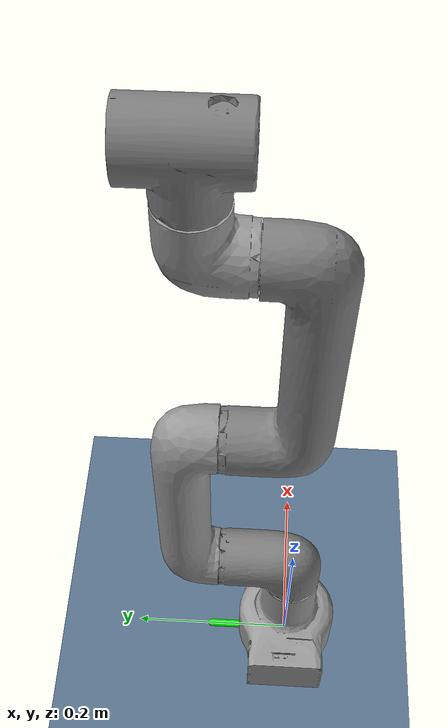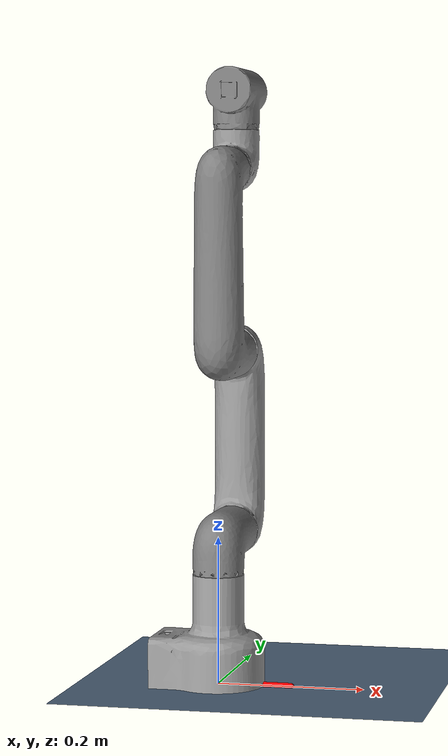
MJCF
<mujoco model="robot_arm">
  <compiler angle="radian"/>
  <option gravity="0 0 0"/>
  <visual>
    <global azimuth="70" elevation="-30" offwidth="1280" offheight="720"/>
  </visual>
  <default>
    <default class="/"/>
    <default class="coordinate_axes/"/>
  </default>
  <asset>
    <texture name="groundplane" type="2d" builtin="checker" rgb1="0.20000000000000001 0.29999999999999999 0.40000000000000002" rgb2="0.5 0.59999999999999998 0.69999999999999996" mark="edge" markrgb="0.80000000000000004 0.80000000000000004 0.80000000000000004" width="300" height="300"/>
    <material name="groundplane" class="/" texture="groundplane" texrepeat="5 5" texuniform="true" reflectance="0.5"/>
    <texture name="metal_gradient_bright" type="2d" builtin="gradient" rgb1="0.80000000000000004 0.80000000000000004 0.80000000000000004" rgb2="0.20000000000000001 0.20000000000000001 0.20000000000000001" width="100" height="100"/>
    <material name="metal_gradient_bright_material" class="/" texture="metal_gradient_bright" texuniform="true" reflectance="0.5"/>
    <texture name="metal_gradient_dark" type="2d" builtin="gradient" rgb1="0.40000000000000002 0.40000000000000002 0.40000000000000002" rgb2="0.80000000000000004 0.80000000000000004 0.80000000000000004" width="100" height="100"/>
    <material name="metal_gradient_dark_material" class="/" texture="metal_gradient_dark" texuniform="true" reflectance="0.5"/>
    <texture name="tag_texture" file="tag_texture.png" gridsize="3 4" gridlayout=".U..LBRF.D.."/>
    <material name="tag_material" class="/" texture="tag_texture" specular="15" shininess="0"/>
    <mesh name="link0" class="/" file="link0.stl" scale="0.001 0.001 0.001"/>
    <mesh name="link1" class="/" file="link1.stl" scale="0.001 0.001 0.001"/>
    <mesh name="link2" class="/" file="link2.stl" scale="0.001 0.001 0.001"/>
    <mesh name="link3" class="/" file="link3.stl" scale="0.001 0.001 0.001"/>
    <mesh name="link4" class="/" file="link4.stl" scale="0.001 0.001 0.001"/>
    <mesh name="link5" class="/" file="link5.stl" scale="0.001 0.001 0.001"/>
    <mesh name="link6" class="/" file="link6.stl" scale="0.001 0.001 0.001"/>
    <mesh name="camera" class="/" file="camera.stl" scale="0.0040000000000000001 0.0040000000000000001 0.0040000000000000001"/>
    <mesh name="tag" class="/" file="tag_d36.stl" scale="0.001 0.001 0.001"/>
    <material name="coordinate_axes/red" class="coordinate_axes/" rgba="1 0 0 1"/>
    <material name="coordinate_axes/green" class="coordinate_axes/" rgba="0 1 0 1"/>
    <material name="coordinate_axes/blue" class="coordinate_axes/" rgba="0 0 1 1"/>
  </asset>
  <worldbody>
    <geom name="ground" class="/" type="plane" size="5 5 1" material="groundplane"/>
    <light name="//unnamed_light_0" class="/" pos="0 0 10" dir="0 0 -1"/>
    <camera name="demo-cam" class="/" pos="-0.40000000000000002 -1 0.5" xyaxes="0.96599999999999997 -0.25900000000000001 0 -0.10199999999999999 0.38 0.91900000000000004"/>
    <body name="base" axisangle="1 0 0 0">
      <geom name="link0_geom" class="/" type="mesh" material="metal_gradient_dark_material" pos="0 0 0" mesh="link0"/>
      <site name="//unnamed_site_0" class="/" pos="0 0 0"/>
      <body pos="0 0 0" name="coordinate_axes/">
        <body name="coordinate_axes/axes">
          <geom name="coordinate_axes//unnamed_geom_0" class="coordinate_axes/" type="capsule" contype="0" conaffinity="0" size="0.0050000000000000001" material="coordinate_axes/red" fromto="0 0 0 0.10000000000000001 0 0"/>
          <geom name="coordinate_axes//unnamed_geom_1" class="coordinate_axes/" type="capsule" contype="0" conaffinity="0" size="0.0050000000000000001" material="coordinate_axes/green" fromto="0 0 0 0 0.10000000000000001 0"/>
          <geom name="coordinate_axes//unnamed_geom_2" class="coordinate_axes/" type="capsule" contype="0" conaffinity="0" size="0.0050000000000000001" material="coordinate_axes/blue" fromto="0 0 0 0 0 0.10000000000000001"/>
        </body>
      </body>
      <body name="link1" pos="0 0 0.10967">
        <geom name="link1_geom" class="/" type="mesh" material="metal_gradient_bright_material" pos="0 0 -0.10967" mesh="link1"/>
        <joint name="joint1" class="/" type="hinge" axis="0 0 1" range="-3.1415926535897931 3.1415926535897931" damping="5"/>
        <body name="link2" pos="0 0.108 0.08967">
          <geom name="link2_geom" class="/" type="mesh" material="metal_gradient_dark_material" pos="0 -0.108 -0.19933999999999999" mesh="link2"/>
          <joint name="joint2" class="/" type="hinge" axis="0 1 0" range="-3.1415926535897931 3.1415926535897931" damping="5"/>
          <body name="link3" pos="0 0 0.25" axisangle="1 0 0 0">
            <geom name="link3_geom" class="/" type="mesh" material="metal_gradient_bright_material" pos="0 -0.108 -0.45100000000000001" mesh="link3"/>
            <joint name="joint3" class="/" type="hinge" axis="0 1 0" range="-3.1415926535897931 3.1415926535897931" damping="5"/>
            <body name="link4" pos="0 0 0.25" axisangle="1 0 0 0">
              <geom name="link4_geom" class="/" type="mesh" material="metal_gradient_dark_material" pos="0 -0.108 -0.69933999999999996" mesh="link4"/>
              <joint name="joint4" class="/" type="hinge" axis="0 1 0" range="-3.1415926535897931 3.1415926535897931" damping="5"/>
              <body name="link5" pos="0 0 0.054550000000000001" axisangle="1 0 0 0">
                <geom name="link5_geom" class="/" type="mesh" material="metal_gradient_bright_material" pos="0 -0.10786 -0.75388999999999995" mesh="link5"/>
                <joint name="joint5" class="/" type="hinge" axis="0 0 1" range="-3.1415926535897931 3.1415926535897931" damping="5"/>
                <body name="link6" pos="0 0.050860000000000002 0.051549999999999999" axisangle="1 0 0 0">
                  <geom name="link6_geom" class="/" type="mesh" material="metal_gradient_dark_material" pos="0 -0.180786 -0.80388999999999999" mesh="link6"/>
                  <joint name="joint6" class="/" type="hinge" axis="0 1 0" range="-3.1415926535897931 3.1415926535897931" damping="5"/>
                </body>
              </body>
            </body>
          </body>
        </body>
      </body>
    </body>
  </worldbody>
  <contact>
    <exclude name="link0_1" body1="base" body2="link1"/>
    <exclude name="link1_2" body1="link1" body2="link2"/>
    <exclude name="link2_3" body1="link2" body2="link3"/>
    <exclude name="link3_4" body1="link3" body2="link4"/>
    <exclude name="link4_5" body1="link4" body2="link5"/>
    <exclude name="link5_6" body1="link5" body2="link6"/>
    <exclude name="link3_5" body1="link3" body2="link5"/>
  </contact>
  <actuator>
    <position name="motor1" class="/" ctrlrange="-3.1415926535897931 3.1415926535897931" gear="1" joint="joint1" kp="10"/>
    <position name="motor2" class="/" ctrlrange="-3.1415926535897931 3.1415926535897931" gear="1" joint="joint2" kp="10"/>
    <position name="motor3" class="/" ctrlrange="-3.1415926535897931 3.1415926535897931" gear="1" joint="joint3" kp="10"/>
    <position name="motor4" class="/" ctrlrange="-3.1415926535897931 3.1415926535897931" gear="1" joint="joint4" kp="10"/>
    <position name="motor5" class="/" ctrlrange="-3.1415926535897931 3.1415926535897931" gear="1" joint="joint5" kp="10"/>
    <position name="motor6" class="/" ctrlrange="-3.1415926535897931 3.1415926535897931" gear="1" joint="joint6" kp="10"/>
  </actuator>
</mujoco>
